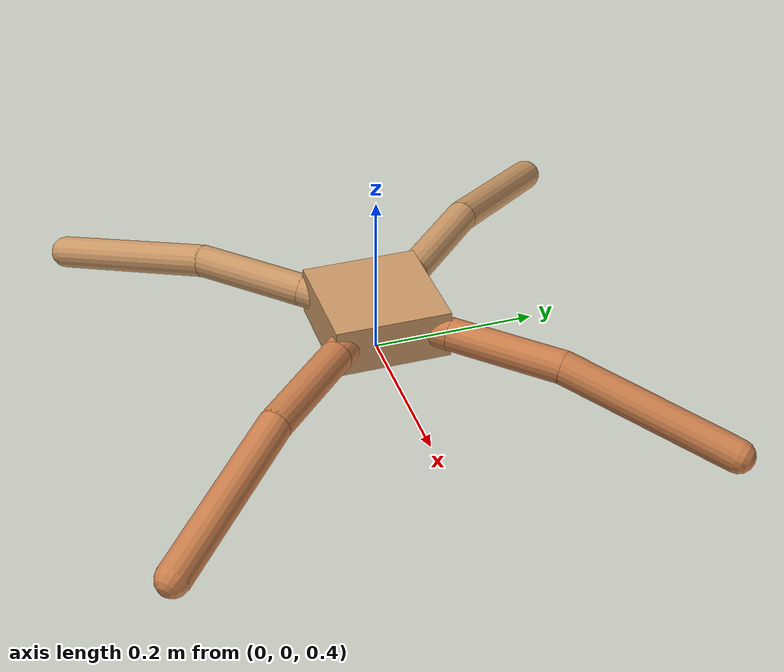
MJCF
<mujoco model="ant">
  <compiler angle="degree" coordinate="local" inertiafromgeom="true"/>
  <option integrator="RK4" timestep="0.01"/>

  <custom>
    <numeric data="0.0 0.0 0.55 1.0 0.0 0.0 0.0 0.0 1.0 0.0 -1.0 0.0 -1.0 0.0 1.0" name="init_qpos"/>
  </custom>

  <default>
    <joint armature="1" damping="1" limited="true"/>
    <geom conaffinity="0" condim="3" density="5.0" friction="2 1 1" margin="0.01" rgba="0.8 0.6 0.4 1"/>
  </default>
  <asset>
    <texture builtin="gradient" height="100" rgb1="1 1 1" rgb2="0 0 0" type="skybox" width="100"/>
    <texture builtin="flat" height="1278" mark="cross" markrgb="1 1 1" name="texgeom" random="0.01" rgb1="0.8 0.6 0.4" rgb2="0.8 0.6 0.4" type="cube" width="127"/>
    <texture builtin="checker" height="100" name="texplane" rgb1="0 0 0" rgb2="0.8 0.8 0.8" type="2d" width="100"/>
    <material name="MatPlane" reflectance="0.5" shininess="1" specular="1" texrepeat="60 60" texture="texplane"/>
    <material name="geom" texture="texgeom" texuniform="true"/>
  </asset>
  <worldbody>
    <body name="torso" pos="0 0 0.45">
      <geom name="torso_geom" pos="0 0 0" size="0.07 0.07 0.03" type="box"/>

      <body name="front_left_leg" pos="0 0 0">
        <geom fromto="0.0 0.0 0.0 0.07 0.07 0.0" name="aux_1_geom" size="0.02" type="capsule" rgba=".8 .5 .3 1"/>
        <body name="aux_1" pos="0.07 0.07 0">

          <joint axis="0 0 1" name="hip_1" pos="0.0 0.0 0.0" range="-40 40" type="hinge"/>
          <!-- 0.1 = 0.14 / sqrt(2)  -->
          <geom fromto="0.0 0.0 0.0 0.1 0.1 0." name="left_leg_geom" size="0.02" type="capsule" rgba=".8 .5 .3 1"/>
          <body name="front_left_foot" pos="0.1 0.1 0">

            <joint axis="-1 1 0" name="ankle_1" pos="0.0 0.0 0.0" range="30 100" type="hinge"/>
            <geom fromto="0.0 0.0 0.0 0.15 0.15 -0.05" name="left_ankle_geom" size="0.02" type="capsule" rgba=".8 .5 .3 1"/>
          </body>
        </body>
      </body>

      <body name="front_right_leg" pos="0 0 0">
        <geom fromto="0.0 0.0 0.0 -0.07 0.07 0.0" name="aux_2_geom" size="0.02" type="capsule"/>
        <body name="aux_2" pos="-0.07 0.07 0">

          <joint axis="0 0 1" name="hip_2" pos="0.0 0.0 0.0" range="-40 40" type="hinge"/>
          <geom fromto="0.0 0.0 0.0 -0.1 0.1 0.0" name="right_leg_geom" size="0.02" type="capsule"/>
          <body name="front_right_foot" pos="-0.1 0.1 0">

            <joint axis="1 1 0" name="ankle_2" pos="0.0 0.0 0.0" range="-100 -30" type="hinge"/>
            <geom fromto="0.0 0.0 0.0 -0.15 0.15 -0.05" name="right_ankle_geom" size="0.02" type="capsule"/>
          </body>
        </body>
      </body>

      <body name="left_back_leg" pos="0 0 0">
        <geom fromto="0.0 0.0 0.0 -0.07 -0.07 0.0" name="aux_3_geom" size="0.02" type="capsule"/>
        <body name="aux_3" pos="-0.07 -0.07 0">

          <joint axis="0 0 1" name="hip_3" pos="0.0 0.0 0.0" range="-40 40" type="hinge"/>
          <geom fromto="0.0 0.0 0.0 -0.1 -0.1 0.0" name="back_leg_geom" size="0.02" type="capsule"/>
          <body name="left_back_foot" pos="-0.1 -0.1 0">

            <joint axis="-1 1 0" name="ankle_3" pos="0.0 0.0 0.0" range="-100 -30" type="hinge"/>
            <geom fromto="0.0 0.0 0.0 -0.15 -0.15 -0.05" name="third_ankle_geom" size="0.02" type="capsule"/>
          </body>
        </body>
      </body>

      <body name="right_back_leg" pos="0 0 0">
        <geom fromto="0.0 0.0 0.0 0.07 -0.07 0.0" name="aux_4_geom" size="0.02" type="capsule" rgba=".8 .5 .3 1"/>
        <body name="aux_4" pos="0.07 -0.07 0">

          <joint axis="0 0 1" name="hip_4" pos="0.0 0.0 0.0" range="-40 40" type="hinge"/>
          <geom fromto="0.0 0.0 0.0 0.1 -0.1 0.0" name="rightback_leg_geom" size="0.02" type="capsule" rgba=".8 .5 .3 1"/>
          <body name="right_back_foot" pos="0.1 -0.1 0">

            <joint axis="1 1 0" name="ankle_4" pos="0.0 0.0 0.0" range="30 100" type="hinge"/>
            <geom fromto="0.0 0.0 0.0 0.15 -0.15 -0.05" name="fourth_ankle_geom" size="0.02" type="capsule" rgba=".8 .5 .3 1"/>
          </body>
        </body>
      </body>

    </body>
  </worldbody>
  <!-- the action space is 8: eight actuator -->

  <actuator>
    <position ctrllimited="true" ctrlrange="-1 1" joint="hip_4" gear="45"/>
    <position ctrllimited="true" ctrlrange="-1 1" joint="ankle_4" gear="45"/>
    <position ctrllimited="true" ctrlrange="-1 1" joint="hip_1" gear="45"/>
    <position ctrllimited="true" ctrlrange="-1 1" joint="ankle_1" gear="45"/>
    <position ctrllimited="true" ctrlrange="-1 1" joint="hip_2" gear="45"/>
    <position ctrllimited="true" ctrlrange="-1 1" joint="ankle_2" gear="45"/>
    <position ctrllimited="true" ctrlrange="-1 1" joint="hip_3" gear="45"/>
    <position ctrllimited="true" ctrlrange="-1 1" joint="ankle_3" gear="45"/>
  </actuator>

</mujoco>
